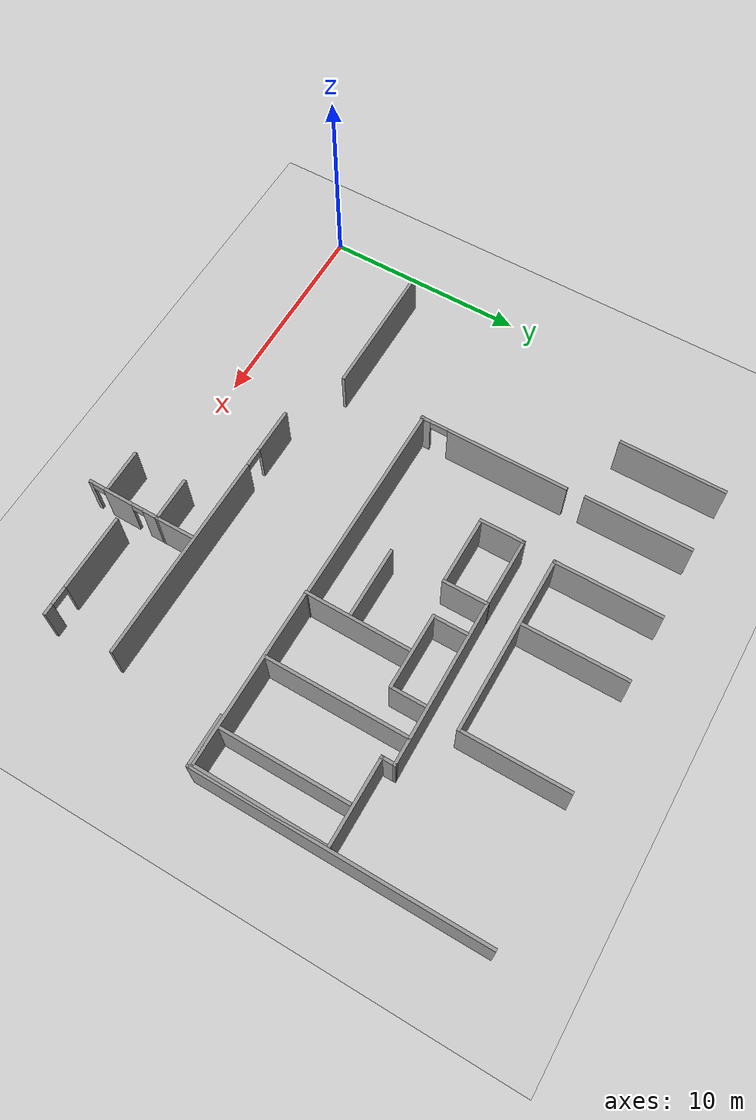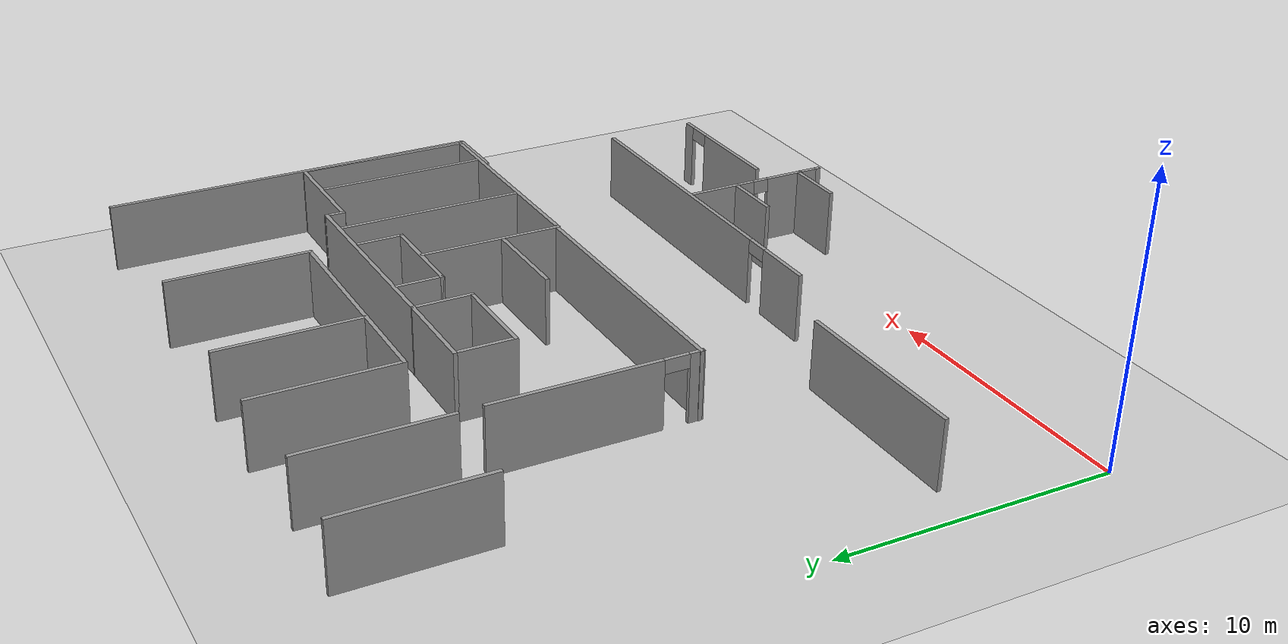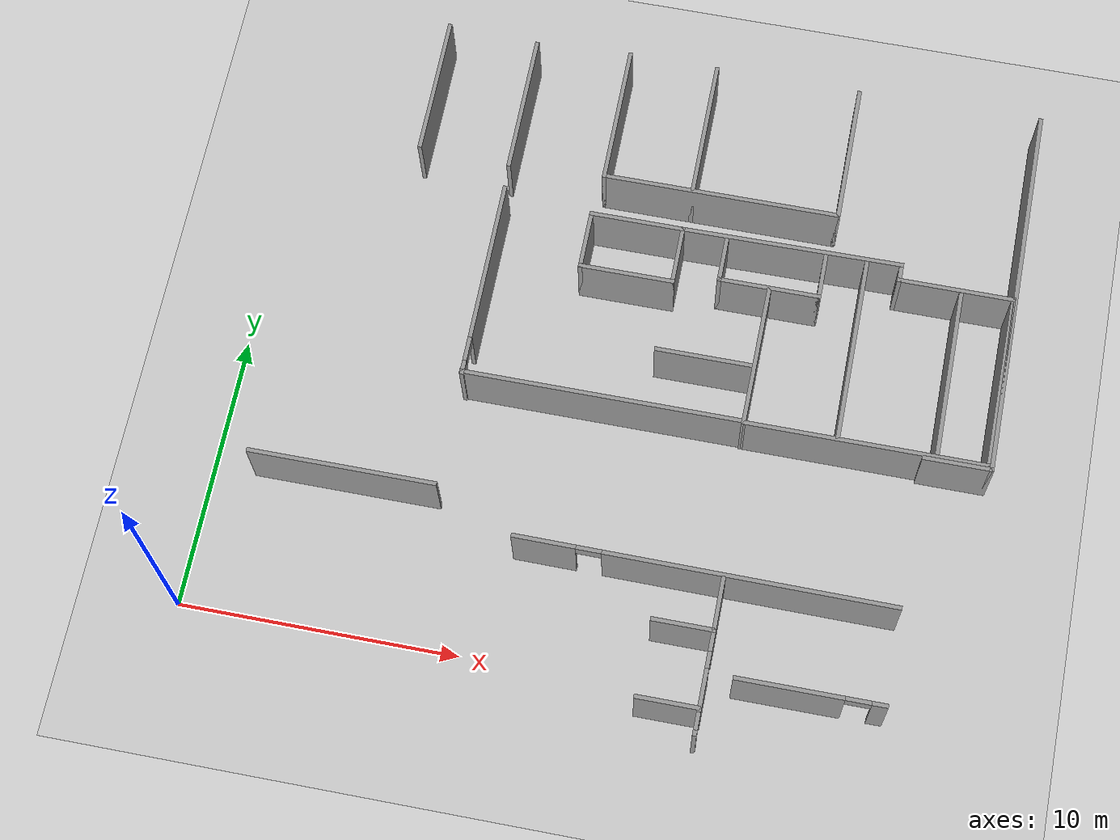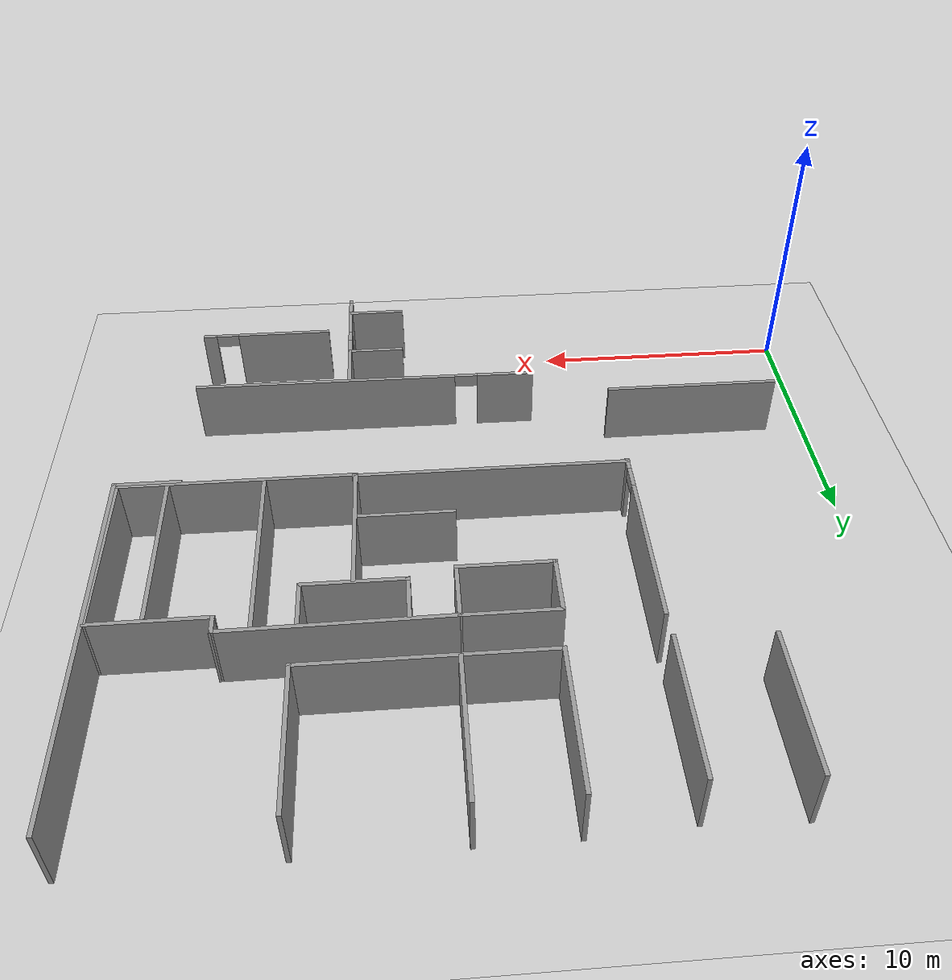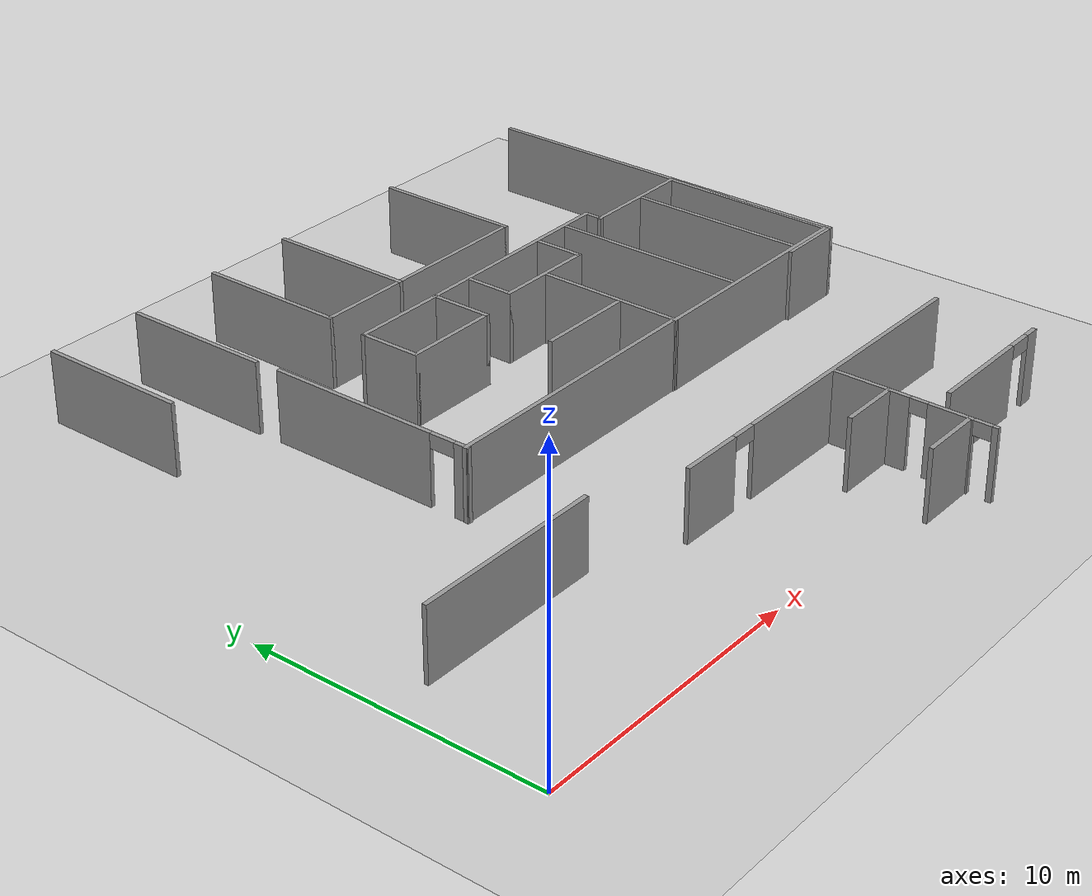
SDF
<sdf version="1.6">
 <world name="default">
  <model name="ground_plane">
   <static>1</static>
   <link name="link">
    <collision name="collision">
     <geometry><plane><normal>0 0 1</normal><size>100 100</size></plane></geometry>
     <surface><friction><ode><mu>100</mu><mu2>50</mu2></ode></friction></surface>
    </collision>
    <visual name="visual">
     <cast_shadows>0</cast_shadows>
     <geometry><plane><normal>0 0 1</normal><size>100 100</size></plane></geometry>
     <material>
      <script><uri>file://media/materials/scripts/gazebo.material</uri><name>Gazebo/Grey</name></script>
     </material>
    </visual>
   </link>
  </model>
  <model name="se1floor1">
   <pose>-5.19256 -0.852459 0 0 -0 0</pose>
   <link name="Wall_10">
    <collision name="Wall_10_Collision">
     <geometry><box><size>2.5 0.15 2.5</size></box></geometry>
     <pose>0 0 1.25 0 -0 0</pose>
    </collision>
    <visual name="Wall_10_Visual">
     <pose>0 0 1.25 0 -0 0</pose>
     <geometry><box><size>2.5 0.15 2.5</size></box></geometry>
     <material>
      <script><uri>file://media/materials/scripts/gazebo.material</uri><name>Gazebo/Grey</name></script>
      <ambient>1 1 1 1</ambient>
     </material>
     <meta><layer>0</layer></meta>
    </visual>
    <pose>30.975 10.175 0 0 -0 0</pose>
   </link>
   <link name="Wall_100">
    <collision name="Wall_100_Collision">
     <geometry><box><size>5.25 0.15 2.5</size></box></geometry>
     <pose>0 0 1.25 0 -0 0</pose>
    </collision>
    <visual name="Wall_100_Visual">
     <pose>0 0 1.25 0 -0 0</pose>
     <geometry><box><size>5.25 0.15 2.5</size></box></geometry>
     <material>
      <script><uri>file://media/materials/scripts/gazebo.material</uri><name>Gazebo/Grey</name></script>
      <ambient>1 1 1 1</ambient>
     </material>
     <meta><layer>0</layer></meta>
    </visual>
    <pose>25.4403 21.3628 0 0 -0 1.5708</pose>
   </link>
   <link name="Wall_103">
    <collision name="Wall_103_Collision">
     <geometry><box><size>2.25 0.15 2.5</size></box></geometry>
     <pose>0 0 1.25 0 -0 0</pose>
    </collision>
    <visual name="Wall_103_Visual">
     <pose>0 0 1.25 0 -0 0</pose>
     <geometry><box><size>2.25 0.15 2.5</size></box></geometry>
     <material>
      <script><uri>file://media/materials/scripts/gazebo.material</uri><name>Gazebo/Grey</name></script>
      <ambient>1 1 1 1</ambient>
     </material>
     <meta><layer>0</layer></meta>
    </visual>
    <pose>16.6798 16.175 0 0 0 -1.5708</pose>
   </link>
   <link name="Wall_104">
    <collision name="Wall_104_Collision">
     <geometry><box><size>3.5 0.15 2.5</size></box></geometry>
     <pose>0 0 1.25 0 -0 0</pose>
    </collision>
    <visual name="Wall_104_Visual">
     <pose>0 0 1.25 0 -0 0</pose>
     <geometry><box><size>3.5 0.15 2.5</size></box></geometry>
     <material>
      <script><uri>file://media/materials/scripts/gazebo.material</uri><name>Gazebo/Grey</name></script>
      <ambient>1 1 1 1</ambient>
     </material>
     <meta><layer>0</layer></meta>
    </visual>
    <pose>18.3548 15.125 0 0 -0 0</pose>
   </link>
   <link name="Wall_105">
    <collision name="Wall_105_Collision">
     <geometry><box><size>2.25 0.15 2.5</size></box></geometry>
     <pose>0 0 1.25 0 -0 0</pose>
    </collision>
    <visual name="Wall_105_Visual">
     <pose>0 0 1.25 0 -0 0</pose>
     <geometry><box><size>2.25 0.15 2.5</size></box></geometry>
     <material>
      <script><uri>file://media/materials/scripts/gazebo.material</uri><name>Gazebo/Grey</name></script>
      <ambient>1 1 1 1</ambient>
     </material>
     <meta><layer>0</layer></meta>
    </visual>
    <pose>20.0298 16.175 0 0 -0 1.5708</pose>
   </link>
   <link name="Wall_106">
    <collision name="Wall_106_Collision">
     <geometry><box><size>3.5 0.15 2.5</size></box></geometry>
     <pose>0 0 1.25 0 -0 0</pose>
    </collision>
    <visual name="Wall_106_Visual">
     <pose>0 0 1.25 0 -0 0</pose>
     <geometry><box><size>3.5 0.15 2.5</size></box></geometry>
     <material>
      <script><uri>file://media/materials/scripts/gazebo.material</uri><name>Gazebo/Grey</name></script>
      <ambient>1 1 1 1</ambient>
     </material>
     <meta><layer>0</layer></meta>
    </visual>
    <pose>18.3548 17.225 0 0 -0 3.14159</pose>
   </link>
   <link name="Wall_108">
    <collision name="Wall_108_Collision">
     <geometry><box><size>5.29673 0.15 2.5</size></box></geometry>
     <pose>0 0 1.25 0 -0 0</pose>
    </collision>
    <visual name="Wall_108_Visual">
     <pose>0 0 1.25 0 -0 0</pose>
     <geometry><box><size>5.29673 0.15 2.5</size></box></geometry>
     <material>
      <script><uri>file://media/materials/scripts/gazebo.material</uri><name>Gazebo/Grey</name></script>
      <ambient>1 1 1 1</ambient>
     </material>
     <meta><layer>0</layer></meta>
    </visual>
    <pose>23.4514 12.8687 0 0 0 -1.57984</pose>
   </link>
   <link name="Wall_109">
    <collision name="Wall_109_Collision">
     <geometry><box><size>8.75 0.15 2.5</size></box></geometry>
     <pose>0 0 1.25 0 -0 0</pose>
    </collision>
    <visual name="Wall_109_Visual">
     <pose>0 0 1.25 0 -0 0</pose>
     <geometry><box><size>8.75 0.15 2.5</size></box></geometry>
     <material>
      <script><uri>file://media/materials/scripts/gazebo.material</uri><name>Gazebo/Grey</name></script>
      <ambient>1 1 1 1</ambient>
     </material>
     <meta><layer>0</layer></meta>
    </visual>
    <pose>27.7281 10.2954 0 0 -0 0</pose>
   </link>
   <link name="Wall_11">
    <collision name="Wall_11_Collision">
     <geometry><box><size>14 0.15 2.5</size></box></geometry>
     <pose>0 0 1.25 0 -0 0</pose>
    </collision>
    <visual name="Wall_11_Visual">
     <pose>0 0 1.25 0 -0 0</pose>
     <geometry><box><size>14 0.15 2.5</size></box></geometry>
     <material>
      <script><uri>file://media/materials/scripts/gazebo.material</uri><name>Gazebo/Grey</name></script>
      <ambient>1 1 1 1</ambient>
     </material>
     <meta><layer>0</layer></meta>
    </visual>
    <pose>32.15 17.1 0 0 -0 1.5708</pose>
   </link>
   <link name="Wall_110">
    <collision name="Wall_110_Collision">
     <geometry><box><size>6.54669 0.15 2.5</size></box></geometry>
     <pose>0 0 1.25 0 -0 0</pose>
    </collision>
    <visual name="Wall_110_Visual">
     <pose>0 0 1.25 0 -0 0</pose>
     <geometry><box><size>6.54669 0.15 2.5</size></box></geometry>
     <material>
      <script><uri>file://media/materials/scripts/gazebo.material</uri><name>Gazebo/Grey</name></script>
      <ambient>1 1 1 1</ambient>
     </material>
     <meta><layer>0</layer></meta>
    </visual>
    <pose>32.0514 13.4937 0 0 -0 1.56352</pose>
   </link>
   <link name="Wall_111">
    <collision name="Wall_111_Collision">
     <geometry><box><size>4.25 0.15 2.5</size></box></geometry>
     <pose>0 0 1.25 0 -0 0</pose>
    </collision>
    <visual name="Wall_111_Visual">
     <pose>0 0 1.25 0 -0 0</pose>
     <geometry><box><size>4.25 0.15 2.5</size></box></geometry>
     <material>
      <script><uri>file://media/materials/scripts/gazebo.material</uri><name>Gazebo/Grey</name></script>
      <ambient>1 1 1 1</ambient>
     </material>
     <meta><layer>0</layer></meta>
    </visual>
    <pose>30.0246 16.6919 0 0 -0 3.14159</pose>
   </link>
   <link name="Wall_112">
    <collision name="Wall_112_Collision">
     <geometry><box><size>0.75 0.15 2.5</size></box></geometry>
     <pose>0 0 1.25 0 -0 0</pose>
    </collision>
    <visual name="Wall_112_Visual">
     <pose>0 0 1.25 0 -0 0</pose>
     <geometry><box><size>0.75 0.15 2.5</size></box></geometry>
     <material>
      <script><uri>file://media/materials/scripts/gazebo.material</uri><name>Gazebo/Grey</name></script>
      <ambient>1 1 1 1</ambient>
     </material>
     <meta><layer>0</layer></meta>
    </visual>
    <pose>27.9746 16.9919 0 0 -0 1.5708</pose>
   </link>
   <link name="Wall_114">
    <collision name="Wall_114_Collision">
     <geometry><box><size>8.0951 0.15 2.5</size></box></geometry>
     <pose>0 0 1.25 0 -0 0</pose>
    </collision>
    <visual name="Wall_114_Visual">
     <pose>0 0 1.25 0 -0 0</pose>
     <geometry><box><size>8.0951 0.15 2.5</size></box></geometry>
     <material>
      <script><uri>file://media/materials/scripts/gazebo.material</uri><name>Gazebo/Grey</name></script>
      <ambient>1 1 1 1</ambient>
     </material>
     <meta><layer>0</layer></meta>
    </visual>
    <pose>24.0022 17.2585 0 0 0 -3.13317</pose>
   </link>
   <link name="Wall_116">
    <collision name="Wall_116_Collision">
     <geometry><box><size>1.75 0.15 2.5</size></box></geometry>
     <pose>0 0 1.25 0 -0 0</pose>
    </collision>
    <visual name="Wall_116_Visual">
     <pose>0 0 1.25 0 -0 0</pose>
     <geometry><box><size>1.75 0.15 2.5</size></box></geometry>
     <material>
      <script><uri>file://media/materials/scripts/gazebo.material</uri><name>Gazebo/Grey</name></script>
      <ambient>1 1 1 1</ambient>
     </material>
     <meta><layer>0</layer></meta>
    </visual>
    <pose>21.6555 16.318 0 0 0 -1.5708</pose>
   </link>
   <link name="Wall_117">
    <collision name="Wall_117_Collision">
     <geometry><box><size>3.75 0.15 2.5</size></box></geometry>
     <pose>0 0 1.25 0 -0 0</pose>
    </collision>
    <visual name="Wall_117_Visual">
     <pose>0 0 1.25 0 -0 0</pose>
     <geometry><box><size>3.75 0.15 2.5</size></box></geometry>
     <material>
      <script><uri>file://media/materials/scripts/gazebo.material</uri><name>Gazebo/Grey</name></script>
      <ambient>1 1 1 1</ambient>
     </material>
     <meta><layer>0</layer></meta>
    </visual>
    <pose>23.4555 15.518 0 0 -0 0</pose>
   </link>
   <link name="Wall_118">
    <collision name="Wall_118_Collision">
     <geometry><box><size>1.75 0.15 2.5</size></box></geometry>
     <pose>0 0 1.25 0 -0 0</pose>
    </collision>
    <visual name="Wall_118_Visual">
     <pose>0 0 1.25 0 -0 0</pose>
     <geometry><box><size>1.75 0.15 2.5</size></box></geometry>
     <material>
      <script><uri>file://media/materials/scripts/gazebo.material</uri><name>Gazebo/Grey</name></script>
      <ambient>1 1 1 1</ambient>
     </material>
     <meta><layer>0</layer></meta>
    </visual>
    <pose>25.2555 16.318 0 0 -0 1.5708</pose>
   </link>
   <link name="Wall_120">
    <collision name="Wall_120_Collision">
     <geometry><box><size>7 0.15 2.5</size></box></geometry>
     <pose>0 0 1.25 0 -0 0</pose>
    </collision>
    <visual name="Wall_120_Visual">
     <pose>0 0 1.25 0 -0 0</pose>
     <geometry><box><size>7 0.15 2.5</size></box></geometry>
     <material>
      <script><uri>file://media/materials/scripts/gazebo.material</uri><name>Gazebo/Grey</name></script>
      <ambient>1 1 1 1</ambient>
     </material>
     <meta><layer>0</layer></meta>
    </visual>
    <pose>26.7383 13.8017 0 0 -0 1.5708</pose>
   </link>
   <link name="Wall_122">
    <collision name="Wall_122_Collision">
     <geometry><box><size>6.25 0.15 2.5</size></box></geometry>
     <pose>0 0 1.25 0 -0 0</pose>
    </collision>
    <visual name="Wall_122_Visual">
     <pose>0 0 1.25 0 -0 0</pose>
     <geometry><box><size>6.25 0.15 2.5</size></box></geometry>
     <material>
      <script><uri>file://media/materials/scripts/gazebo.material</uri><name>Gazebo/Grey</name></script>
      <ambient>1 1 1 1</ambient>
     </material>
     <meta><layer>0</layer></meta>
    </visual>
    <pose>30.2159 13.4795 0 0 0 -1.5708</pose>
   </link>
   <link name="Wall_124">
    <collision name="Wall_124_Collision">
     <geometry><box><size>5.25 0.15 2.5</size></box></geometry>
     <pose>0 0 1.25 0 -0 0</pose>
    </collision>
    <visual name="Wall_124_Visual">
     <pose>0 0 1.25 0 -0 0</pose>
     <geometry><box><size>5.25 0.15 2.5</size></box></geometry>
     <material>
      <script><uri>file://media/materials/scripts/gazebo.material</uri><name>Gazebo/Grey</name></script>
      <ambient>1 1 1 1</ambient>
     </material>
     <meta><layer>0</layer></meta>
    </visual>
    <pose>20.104 21.3628 0 0 0 -1.5708</pose>
   </link>
   <link name="Wall_130">
    <pose>23.0675 4.71196 0 0 0 -0.005198</pose>
    <visual name="Wall_130_Visual_0">
     <pose>-5.6204 0 1.25 0 -0 0</pose>
     <geometry><box><size>2.2597 0.15 2.5</size></box></geometry>
     <material>
      <script><uri>file://media/materials/scripts/gazebo.material</uri><name>Gazebo/Grey</name></script>
      <ambient>1 1 1 1</ambient>
     </material>
     <meta><layer>0</layer></meta>
    </visual>
    <collision name="Wall_130_Collision_0">
     <geometry><box><size>2.2597 0.15 2.5</size></box></geometry>
     <pose>-5.6204 0 1.25 0 -0 0</pose>
    </collision>
    <visual name="Wall_130_Visual_1">
     <pose>1.57985 0 1.25 0 -0 0</pose>
     <geometry><box><size>10.3408 0.15 2.5</size></box></geometry>
     <material>
      <script><uri>file://media/materials/scripts/gazebo.material</uri><name>Gazebo/Grey</name></script>
      <ambient>1 1 1 1</ambient>
     </material>
     <meta><layer>0</layer></meta>
    </visual>
    <collision name="Wall_130_Collision_1">
     <geometry><box><size>10.3408 0.15 2.5</size></box></geometry>
     <pose>1.57985 0 1.25 0 -0 0</pose>
    </collision>
    <visual name="Wall_130_Visual_2">
     <pose>-4.04055 0 2.25 0 -0 0</pose>
     <geometry><box><size>0.9 0.15 0.5</size></box></geometry>
     <material>
      <script><uri>file://media/materials/scripts/gazebo.material</uri><name>Gazebo/Grey</name></script>
      <ambient>1 1 1 1</ambient>
     </material>
     <meta><layer>0</layer></meta>
    </visual>
    <collision name="Wall_130_Collision_2">
     <geometry><box><size>0.9 0.15 0.5</size></box></geometry>
     <pose>-4.04055 0 2.25 0 -0 0</pose>
    </collision>
   </link>
   <link name="Wall_148">
    <pose>27.2423 1.24434 0 0 -0 0</pose>
    <visual name="Wall_148_Visual_0">
     <pose>-0.727533 0 1.25 0 -0 0</pose>
     <geometry><box><size>3.79493 0.15 2.5</size></box></geometry>
     <material>
      <script><uri>file://media/materials/scripts/gazebo.material</uri><name>Gazebo/Grey</name></script>
      <ambient>1 1 1 1</ambient>
     </material>
     <meta><layer>0</layer></meta>
    </visual>
    <collision name="Wall_148_Collision_0">
     <geometry><box><size>3.79493 0.15 2.5</size></box></geometry>
     <pose>-0.727533 0 1.25 0 -0 0</pose>
    </collision>
    <visual name="Wall_148_Visual_1">
     <pose>2.34747 0 1.25 0 -0 0</pose>
     <geometry><box><size>0.555066 0.15 2.5</size></box></geometry>
     <material>
      <script><uri>file://media/materials/scripts/gazebo.material</uri><name>Gazebo/Grey</name></script>
      <ambient>1 1 1 1</ambient>
     </material>
     <meta><layer>0</layer></meta>
    </visual>
    <collision name="Wall_148_Collision_1">
     <geometry><box><size>0.555066 0.15 2.5</size></box></geometry>
     <pose>2.34747 0 1.25 0 -0 0</pose>
    </collision>
    <visual name="Wall_148_Visual_2">
     <pose>1.61993 0 2.25 0 -0 0</pose>
     <geometry><box><size>0.9 0.15 0.5</size></box></geometry>
     <material>
      <script><uri>file://media/materials/scripts/gazebo.material</uri><name>Gazebo/Grey</name></script>
      <ambient>1 1 1 1</ambient>
     </material>
     <meta><layer>0</layer></meta>
    </visual>
    <collision name="Wall_148_Collision_2">
     <geometry><box><size>0.9 0.15 0.5</size></box></geometry>
     <pose>1.61993 0 2.25 0 -0 0</pose>
    </collision>
   </link>
   <link name="Wall_184">
    <collision name="Wall_184_Collision">
     <geometry><box><size>2 0.15 2.5</size></box></geometry>
     <pose>0 0 1.25 0 -0 0</pose>
    </collision>
    <visual name="Wall_184_Visual">
     <pose>0 0 1.25 0 -0 0</pose>
     <geometry><box><size>2 0.15 2.5</size></box></geometry>
     <material>
      <script><uri>file://media/materials/scripts/gazebo.material</uri><name>Gazebo/Grey</name></script>
      <ambient>1 1 1 1</ambient>
     </material>
     <meta><layer>0</layer></meta>
    </visual>
    <pose>23.7131 3.65787 0 0 -0 1.5708</pose>
   </link>
   <link name="Wall_186">
    <collision name="Wall_186_Collision">
     <geometry><box><size>2.25 0.15 2.5</size></box></geometry>
     <pose>0 0 1.25 0 -0 0</pose>
    </collision>
    <visual name="Wall_186_Visual">
     <pose>0 0 1.25 0 -0 0</pose>
     <geometry><box><size>2.25 0.15 2.5</size></box></geometry>
     <material>
      <script><uri>file://media/materials/scripts/gazebo.material</uri><name>Gazebo/Grey</name></script>
      <ambient>1 1 1 1</ambient>
     </material>
     <meta><layer>0</layer></meta>
    </visual>
    <pose>22.6631 2.73287 0 0 -0 3.14159</pose>
   </link>
   <link name="Wall_188">
    <pose>23.7051 0.930372 0 0 0 -1.57528</pose>
    <visual name="Wall_188_Visual_0">
     <pose>-1.47038 0 1.25 0 -0 0</pose>
     <geometry><box><size>0.815253 0.15 2.5</size></box></geometry>
     <material>
      <script><uri>file://media/materials/scripts/gazebo.material</uri><name>Gazebo/Grey</name></script>
      <ambient>1 1 1 1</ambient>
     </material>
     <meta><layer>0</layer></meta>
    </visual>
    <collision name="Wall_188_Collision_0">
     <geometry><box><size>0.815253 0.15 2.5</size></box></geometry>
     <pose>-1.47038 0 1.25 0 -0 0</pose>
    </collision>
    <visual name="Wall_188_Visual_1">
     <pose>0.29535 0 1.25 0 -0 0</pose>
     <geometry><box><size>1.51759 0.15 2.5</size></box></geometry>
     <material>
      <script><uri>file://media/materials/scripts/gazebo.material</uri><name>Gazebo/Grey</name></script>
      <ambient>1 1 1 1</ambient>
     </material>
     <meta><layer>0</layer></meta>
    </visual>
    <collision name="Wall_188_Collision_1">
     <geometry><box><size>1.51759 0.15 2.5</size></box></geometry>
     <pose>0.29535 0 1.25 0 -0 0</pose>
    </collision>
    <visual name="Wall_188_Visual_2">
     <pose>1.77724 0 1.25 0 -0 0</pose>
     <geometry><box><size>0.201525 0.15 2.5</size></box></geometry>
     <material>
      <script><uri>file://media/materials/scripts/gazebo.material</uri><name>Gazebo/Grey</name></script>
      <ambient>1 1 1 1</ambient>
     </material>
     <meta><layer>0</layer></meta>
    </visual>
    <collision name="Wall_188_Collision_2">
     <geometry><box><size>0.201525 0.15 2.5</size></box></geometry>
     <pose>1.77724 0 1.25 0 -0 0</pose>
    </collision>
    <visual name="Wall_188_Visual_3">
     <pose>-0.763098 0 2.25 0 -0 0</pose>
     <geometry><box><size>0.599305 0.15 0.5</size></box></geometry>
     <material>
      <script><uri>file://media/materials/scripts/gazebo.material</uri><name>Gazebo/Grey</name></script>
      <ambient>1 1 1 1</ambient>
     </material>
     <meta><layer>0</layer></meta>
    </visual>
    <collision name="Wall_188_Collision_3">
     <geometry><box><size>0.599305 0.15 0.5</size></box></geometry>
     <pose>-0.763098 0 2.25 0 -0 0</pose>
    </collision>
    <visual name="Wall_188_Visual_4">
     <pose>1.36531 0 2.25 0 -0 0</pose>
     <geometry><box><size>0.622332 0.15 0.5</size></box></geometry>
     <material>
      <script><uri>file://media/materials/scripts/gazebo.material</uri><name>Gazebo/Grey</name></script>
      <ambient>1 1 1 1</ambient>
     </material>
     <meta><layer>0</layer></meta>
    </visual>
    <collision name="Wall_188_Collision_4">
     <geometry><box><size>0.622332 0.15 0.5</size></box></geometry>
     <pose>1.36531 0 2.25 0 -0 0</pose>
    </collision>
   </link>
   <link name="Wall_197">
    <collision name="Wall_197_Collision">
     <geometry><box><size>3.5 0.15 2.5</size></box></geometry>
     <pose>0 0 1.25 0 -0 0</pose>
    </collision>
    <visual name="Wall_197_Visual">
     <pose>0 0 1.25 0 -0 0</pose>
     <geometry><box><size>3.5 0.15 2.5</size></box></geometry>
     <material>
      <script><uri>file://media/materials/scripts/gazebo.material</uri><name>Gazebo/Grey</name></script>
      <ambient>1 1 1 1</ambient>
     </material>
     <meta><layer>0</layer></meta>
    </visual>
    <pose>21.6259 12.4529 0 0 -0 0</pose>
   </link>
   <link name="Wall_199">
    <collision name="Wall_199_Collision">
     <geometry><box><size>10.25 0.15 2.5</size></box></geometry>
     <pose>0 0 1.25 0 -0 0</pose>
    </collision>
    <visual name="Wall_199_Visual">
     <pose>0 0 1.25 0 -0 0</pose>
     <geometry><box><size>10.25 0.15 2.5</size></box></geometry>
     <material>
      <script><uri>file://media/materials/scripts/gazebo.material</uri><name>Gazebo/Grey</name></script>
      <ambient>1 1 1 1</ambient>
     </material>
     <meta><layer>0</layer></meta>
    </visual>
    <pose>18.4246 10.3419 0 0 -0 3.14159</pose>
   </link>
   <link name="Wall_205">
    <collision name="Wall_205_Collision">
     <geometry><box><size>2.25 0.15 2.5</size></box></geometry>
     <pose>0 0 1.25 0 -0 0</pose>
    </collision>
    <visual name="Wall_205_Visual">
     <pose>0 0 1.25 0 -0 0</pose>
     <geometry><box><size>2.25 0.15 2.5</size></box></geometry>
     <material>
      <script><uri>file://media/materials/scripts/gazebo.material</uri><name>Gazebo/Grey</name></script>
      <ambient>1 1 1 1</ambient>
     </material>
     <meta><layer>0</layer></meta>
    </visual>
    <pose>22.6059 0.004727 0 0 -0 0</pose>
   </link>
   <link name="Wall_21">
    <pose>13.3922 13.9703 0 0 -0 1.5708</pose>
    <visual name="Wall_21_Visual_0">
     <pose>-3.48174 0 1.25 0 -0 0</pose>
     <geometry><box><size>0.536526 0.15 2.5</size></box></geometry>
     <material>
      <script><uri>file://media/materials/scripts/gazebo.material</uri><name>Gazebo/Grey</name></script>
      <ambient>1 1 1 1</ambient>
     </material>
     <meta><layer>0</layer></meta>
    </visual>
    <collision name="Wall_21_Collision_0">
     <geometry><box><size>0.536526 0.15 2.5</size></box></geometry>
     <pose>-3.48174 0 1.25 0 -0 0</pose>
    </collision>
    <visual name="Wall_21_Visual_1">
     <pose>0.718263 0 1.25 0 -0 0</pose>
     <geometry><box><size>6.06347 0.15 2.5</size></box></geometry>
     <material>
      <script><uri>file://media/materials/scripts/gazebo.material</uri><name>Gazebo/Grey</name></script>
      <ambient>1 1 1 1</ambient>
     </material>
     <meta><layer>0</layer></meta>
    </visual>
    <collision name="Wall_21_Collision_1">
     <geometry><box><size>6.06347 0.15 2.5</size></box></geometry>
     <pose>0.718263 0 1.25 0 -0 0</pose>
    </collision>
    <visual name="Wall_21_Visual_2">
     <pose>-2.76347 0 2.25 0 -0 0</pose>
     <geometry><box><size>0.9 0.15 0.5</size></box></geometry>
     <material>
      <script><uri>file://media/materials/scripts/gazebo.material</uri><name>Gazebo/Grey</name></script>
      <ambient>1 1 1 1</ambient>
     </material>
     <meta><layer>0</layer></meta>
    </visual>
    <collision name="Wall_21_Collision_2">
     <geometry><box><size>0.9 0.15 0.5</size></box></geometry>
     <pose>-2.76347 0 2.25 0 -0 0</pose>
    </collision>
   </link>
   <link name="Wall_3">
    <collision name="Wall_3_Collision">
     <geometry><box><size>6.75 0.15 2.5</size></box></geometry>
     <pose>0 0 1.25 0 -0 0</pose>
    </collision>
    <visual name="Wall_3_Visual">
     <pose>0 0 1.25 0 -0 0</pose>
     <geometry><box><size>6.75 0.15 2.5</size></box></geometry>
     <material>
      <script><uri>file://media/materials/scripts/gazebo.material</uri><name>Gazebo/Grey</name></script>
      <ambient>1 1 1 1</ambient>
     </material>
     <meta><layer>0</layer></meta>
    </visual>
    <pose>10.05 6.075 0 0 -0 0</pose>
   </link>
   <link name="Wall_79">
    <collision name="Wall_79_Collision">
     <geometry><box><size>5.25 0.15 2.5</size></box></geometry>
     <pose>0 0 1.25 0 -0 0</pose>
    </collision>
    <visual name="Wall_79_Visual">
     <pose>0 0 1.25 0 -0 0</pose>
     <geometry><box><size>5.25 0.15 2.5</size></box></geometry>
     <material>
      <script><uri>file://media/materials/scripts/gazebo.material</uri><name>Gazebo/Grey</name></script>
      <ambient>1 1 1 1</ambient>
     </material>
     <meta><layer>0</layer></meta>
    </visual>
    <pose>13.3387 21.1661 0 0 -0 1.5708</pose>
   </link>
   <link name="Wall_96">
    <collision name="Wall_96_Collision">
     <geometry><box><size>5.25 0.15 2.5</size></box></geometry>
     <pose>0 0 1.25 0 -0 0</pose>
    </collision>
    <visual name="Wall_96_Visual">
     <pose>0 0 1.25 0 -0 0</pose>
     <geometry><box><size>5.25 0.15 2.5</size></box></geometry>
     <material>
      <script><uri>file://media/materials/scripts/gazebo.material</uri><name>Gazebo/Grey</name></script>
      <ambient>1 1 1 1</ambient>
     </material>
     <meta><layer>0</layer></meta>
    </visual>
    <pose>9.99199 21.3093 0 0 0 -1.5708</pose>
   </link>
   <link name="Wall_98">
    <collision name="Wall_98_Collision">
     <geometry><box><size>5.25 0.15 2.5</size></box></geometry>
     <pose>0 0 1.25 0 -0 0</pose>
    </collision>
    <visual name="Wall_98_Visual">
     <pose>0 0 1.25 0 -0 0</pose>
     <geometry><box><size>5.25 0.15 2.5</size></box></geometry>
     <material>
      <script><uri>file://media/materials/scripts/gazebo.material</uri><name>Gazebo/Grey</name></script>
      <ambient>1 1 1 1</ambient>
     </material>
     <meta><layer>0</layer></meta>
    </visual>
    <pose>16.8403 21.3628 0 0 0 -1.5708</pose>
   </link>
   <link name="Wall_99">
    <collision name="Wall_99_Collision">
     <geometry><box><size>8.75 0.15 2.5</size></box></geometry>
     <pose>0 0 1.25 0 -0 0</pose>
    </collision>
    <visual name="Wall_99_Visual">
     <pose>0 0 1.25 0 -0 0</pose>
     <geometry><box><size>8.75 0.15 2.5</size></box></geometry>
     <material>
      <script><uri>file://media/materials/scripts/gazebo.material</uri><name>Gazebo/Grey</name></script>
      <ambient>1 1 1 1</ambient>
     </material>
     <meta><layer>0</layer></meta>
    </visual>
    <pose>21.1403 18.8128 0 0 -0 0</pose>
   </link>
   <static>1</static>
  </model>
 </world>
</sdf>
